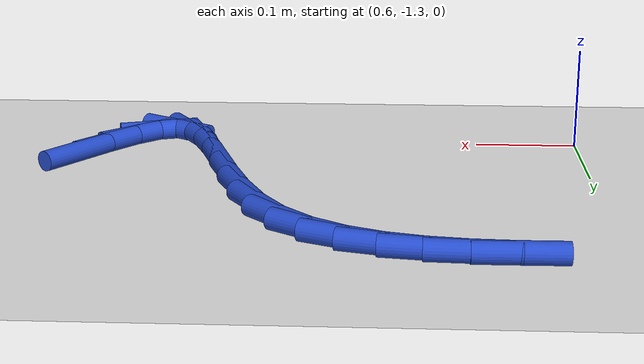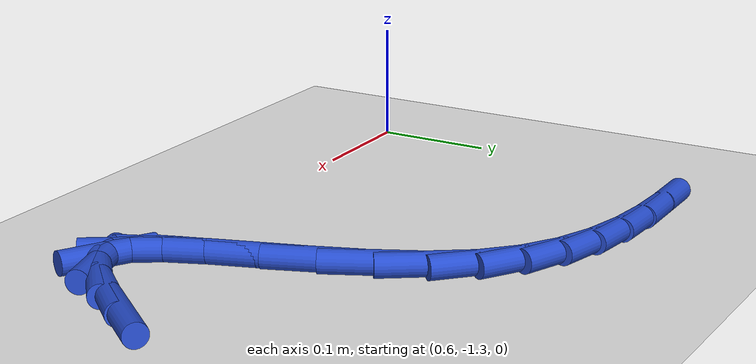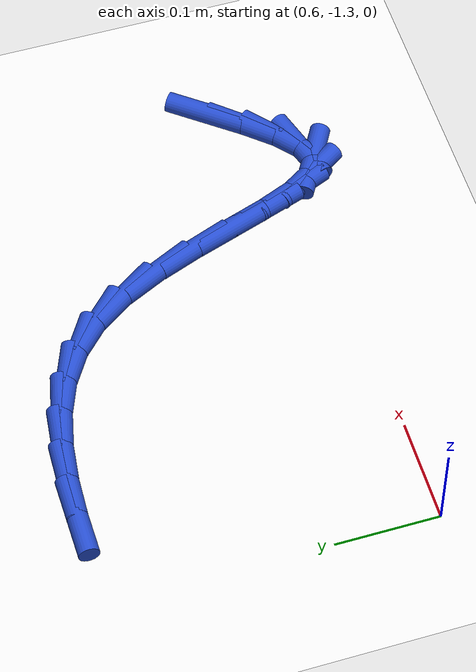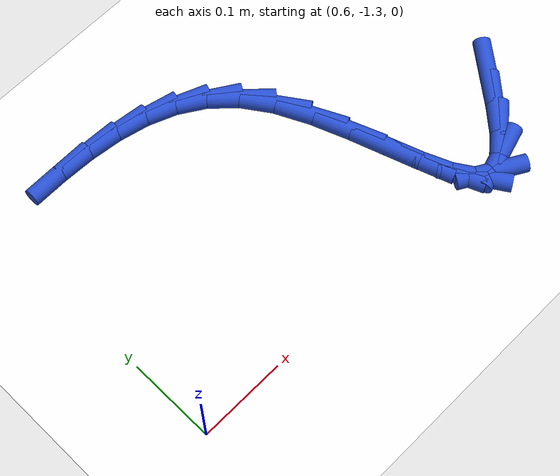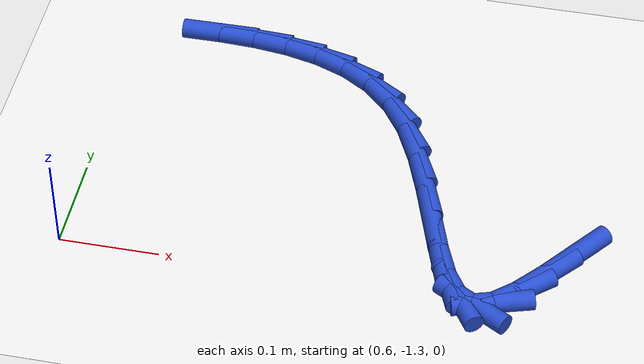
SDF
<sdf version="1.6">
 <world name="default">
  <model name="ground_plane">
   <static>1</static>
   <link name="link">
    <collision name="collision">
     <geometry><plane><normal>0 0 1</normal><size>100 100</size></plane></geometry>
     <surface><friction><ode><mu>100</mu><mu2>50</mu2></ode></friction></surface>
    </collision>
    <visual name="visual">
     <cast_shadows>0</cast_shadows>
     <geometry><plane><normal>0 0 1</normal><size>100 100</size></plane></geometry>
     <material>
      <script><uri>file://media/materials/scripts/gazebo.material</uri><name>Gazebo/WhiteGlow</name></script>
     </material>
    </visual>
   </link>
  </model>
  <model name="line">
   <link name="link_164">
    <pose>1.0966391655607017 -1.2295465731342317 0.01 0 1.57 0.9031955060078656</pose>
    <collision name="collision">
     <geometry><cylinder><radius>0.01</radius><length>0.08</length></cylinder></geometry>
    </collision>
    <visual name="visual">
     <material>
      <script><name>Gazebo/Blue</name><uri>file://media/materials/scripts/gazebo.material</uri></script>
     </material>
     <geometry><cylinder><radius>0.01</radius><length>0.08</length></cylinder></geometry>
    </visual>
   </link>
   <link name="link_165">
    <pose>1.0713940146312226 -1.261569078884365 0.01 0 1.57 0.8509544470889657</pose>
    <collision name="collision">
     <geometry><cylinder><radius>0.01</radius><length>0.08</length></cylinder></geometry>
    </collision>
    <visual name="visual">
     <material>
      <script><name>Gazebo/Blue</name><uri>file://media/materials/scripts/gazebo.material</uri></script>
     </material>
     <geometry><cylinder><radius>0.01</radius><length>0.08</length></cylinder></geometry>
    </visual>
   </link>
   <link name="link_166">
    <pose>1.048137651137084 -1.2880935735134138 0.01 0 1.57 0.7005729947140925</pose>
    <collision name="collision">
     <geometry><cylinder><radius>0.01</radius><length>0.08</length></cylinder></geometry>
    </collision>
    <visual name="visual">
     <material>
      <script><name>Gazebo/Blue</name><uri>file://media/materials/scripts/gazebo.material</uri></script>
     </material>
     <geometry><cylinder><radius>0.01</radius><length>0.08</length></cylinder></geometry>
    </visual>
   </link>
   <link name="link_167">
    <pose>1.0271497157677127 -1.305792035335035 0.01 0 1.57 0.2920759678764922</pose>
    <collision name="collision">
     <geometry><cylinder><radius>0.01</radius><length>0.08</length></cylinder></geometry>
    </collision>
    <visual name="visual">
     <material>
      <script><name>Gazebo/Blue</name><uri>file://media/materials/scripts/gazebo.material</uri></script>
     </material>
     <geometry><cylinder><radius>0.01</radius><length>0.08</length></cylinder></geometry>
    </visual>
   </link>
   <link name="link_168">
    <pose>1.008709849212536 -1.3113364426628824 0.01 0 1.57 -0.5194032025865831</pose>
    <collision name="collision">
     <geometry><cylinder><radius>0.01</radius><length>0.08</length></cylinder></geometry>
    </collision>
    <visual name="visual">
     <material>
      <script><name>Gazebo/Blue</name><uri>file://media/materials/scripts/gazebo.material</uri></script>
     </material>
     <geometry><cylinder><radius>0.01</radius><length>0.08</length></cylinder></geometry>
    </visual>
   </link>
   <link name="link_169">
    <pose>0.9929250329190722 -1.3023111636634246 0.01 0 1.57 -1.0036327482725396</pose>
    <collision name="collision">
     <geometry><cylinder><radius>0.01</radius><length>0.08</length></cylinder></geometry>
    </collision>
    <visual name="visual">
     <material>
      <script><name>Gazebo/Blue</name><uri>file://media/materials/scripts/gazebo.material</uri></script>
     </material>
     <geometry><cylinder><radius>0.01</radius><length>0.08</length></cylinder></geometry>
    </visual>
   </link>
   <link name="link_170">
    <pose>0.9790902230967183 -1.2805915826068701 0.01 0 1.57 -1.1815812076802297</pose>
    <collision name="collision">
     <geometry><cylinder><radius>0.01</radius><length>0.08</length></cylinder></geometry>
    </collision>
    <visual name="visual">
     <material>
      <script><name>Gazebo/Blue</name><uri>file://media/materials/scripts/gazebo.material</uri></script>
     </material>
     <geometry><cylinder><radius>0.01</radius><length>0.08</length></cylinder></geometry>
    </visual>
   </link>
   <link name="link_171">
    <pose>0.9662618709882933 -1.2493134247040427 0.01 0 1.57 -1.244313992393174</pose>
    <collision name="collision">
     <geometry><cylinder><radius>0.01</radius><length>0.08</length></cylinder></geometry>
    </collision>
    <visual name="visual">
     <material>
      <script><name>Gazebo/Blue</name><uri>file://media/materials/scripts/gazebo.material</uri></script>
     </material>
     <geometry><cylinder><radius>0.01</radius><length>0.08</length></cylinder></geometry>
    </visual>
   </link>
   <link name="link_172">
    <pose>0.9534963959445322 -1.2116125836943186 0.01 0 1.57 -1.2494051518313285</pose>
    <collision name="collision">
     <geometry><cylinder><radius>0.01</radius><length>0.08</length></cylinder></geometry>
    </collision>
    <visual name="visual">
     <material>
      <script><name>Gazebo/Blue</name><uri>file://media/materials/scripts/gazebo.material</uri></script>
     </material>
     <geometry><cylinder><radius>0.01</radius><length>0.08</length></cylinder></geometry>
    </visual>
   </link>
   <link name="link_173">
    <pose>0.9398502173161696 -1.170624953317074 0.01 0 1.57 -1.2110986082822146</pose>
    <collision name="collision">
     <geometry><cylinder><radius>0.01</radius><length>0.08</length></cylinder></geometry>
    </collision>
    <visual name="visual">
     <material>
      <script><name>Gazebo/Blue</name><uri>file://media/materials/scripts/gazebo.material</uri></script>
     </material>
     <geometry><cylinder><radius>0.01</radius><length>0.08</length></cylinder></geometry>
    </visual>
   </link>
   <link name="link_174">
    <pose>0.9243797544539423 -1.1294864273116885 0.01 0 1.57 -1.1248830221234867</pose>
    <collision name="collision">
     <geometry><cylinder><radius>0.01</radius><length>0.08</length></cylinder></geometry>
    </collision>
    <visual name="visual">
     <material>
      <script><name>Gazebo/Blue</name><uri>file://media/materials/scripts/gazebo.material</uri></script>
     </material>
     <geometry><cylinder><radius>0.01</radius><length>0.08</length></cylinder></geometry>
    </visual>
   </link>
   <link name="link_175">
    <pose>0.9061414267085852 -1.091332899417537 0.01 0 1.57 -0.9716847962339435</pose>
    <collision name="collision">
     <geometry><cylinder><radius>0.01</radius><length>0.08</length></cylinder></geometry>
    </collision>
    <visual name="visual">
     <material>
      <script><name>Gazebo/Blue</name><uri>file://media/materials/scripts/gazebo.material</uri></script>
     </material>
     <geometry><cylinder><radius>0.01</radius><length>0.08</length></cylinder></geometry>
    </visual>
   </link>
   <link name="link_176">
    <pose>0.8842182957829852 -1.0592267744171064 0.01 0 1.57 -0.7662430600031123</pose>
    <collision name="collision">
     <geometry><cylinder><radius>0.01</radius><length>0.08</length></cylinder></geometry>
    </collision>
    <visual name="visual">
     <material>
      <script><name>Gazebo/Blue</name><uri>file://media/materials/scripts/gazebo.material</uri></script>
     </material>
     <geometry><cylinder><radius>0.01</radius><length>0.08</length></cylinder></geometry>
    </visual>
   </link>
   <link name="link_177">
    <pose>0.8583737584905968 -1.0343538541064905 0.01 0 1.57 -0.5620000540179578</pose>
    <collision name="collision">
     <geometry><cylinder><radius>0.01</radius><length>0.08</length></cylinder></geometry>
    </collision>
    <visual name="visual">
     <material>
      <script><name>Gazebo/Blue</name><uri>file://media/materials/scripts/gazebo.material</uri></script>
     </material>
     <geometry><cylinder><radius>0.01</radius><length>0.08</length></cylinder></geometry>
    </visual>
   </link>
   <link name="link_178">
    <pose>0.8290913422212607 -1.0159135674351523 0.01 0 1.57 -0.38111728964808045</pose>
    <collision name="collision">
     <geometry><cylinder><radius>0.01</radius><length>0.08</length></cylinder></geometry>
    </collision>
    <visual name="visual">
     <material>
      <script><name>Gazebo/Blue</name><uri>file://media/materials/scripts/gazebo.material</uri></script>
     </material>
     <geometry><cylinder><radius>0.01</radius><length>0.08</length></cylinder></geometry>
    </visual>
   </link>
   <link name="link_179">
    <pose>0.7968891838738925 -1.003009878180945 0.01 0 1.57 -0.2344031744269837</pose>
    <collision name="collision">
     <geometry><cylinder><radius>0.01</radius><length>0.08</length></cylinder></geometry>
    </collision>
    <visual name="visual">
     <material>
      <script><name>Gazebo/Blue</name><uri>file://media/materials/scripts/gazebo.material</uri></script>
     </material>
     <geometry><cylinder><radius>0.01</radius><length>0.08</length></cylinder></geometry>
    </visual>
   </link>
   <link name="link_180">
    <pose>0.7622854203474058 -0.994746750121719 0.01 0 1.57 -0.12321333402177613</pose>
    <collision name="collision">
     <geometry><cylinder><radius>0.01</radius><length>0.08</length></cylinder></geometry>
    </collision>
    <visual name="visual">
     <material>
      <script><name>Gazebo/Blue</name><uri>file://media/materials/scripts/gazebo.material</uri></script>
     </material>
     <geometry><cylinder><radius>0.01</radius><length>0.08</length></cylinder></geometry>
    </visual>
   </link>
   <link name="link_181">
    <pose>0.7257981885407154 -0.990228147035327 0.01 0 1.57 -0.04409296795416024</pose>
    <collision name="collision">
     <geometry><cylinder><radius>0.01</radius><length>0.08</length></cylinder></geometry>
    </collision>
    <visual name="visual">
     <material>
      <script><name>Gazebo/Blue</name><uri>file://media/materials/scripts/gazebo.material</uri></script>
     </material>
     <geometry><cylinder><radius>0.01</radius><length>0.08</length></cylinder></geometry>
    </visual>
   </link>
   <link name="link_182">
    <pose>0.6879456253527344 -0.9885580326996207 0.01 0 1.57 0.007295476787321607</pose>
    <collision name="collision">
     <geometry><cylinder><radius>0.01</radius><length>0.08</length></cylinder></geometry>
    </collision>
    <visual name="visual">
     <material>
      <script><name>Gazebo/Blue</name><uri>file://media/materials/scripts/gazebo.material</uri></script>
     </material>
     <geometry><cylinder><radius>0.01</radius><length>0.08</length></cylinder></geometry>
    </visual>
   </link>
  </model>
 </world>
</sdf>
